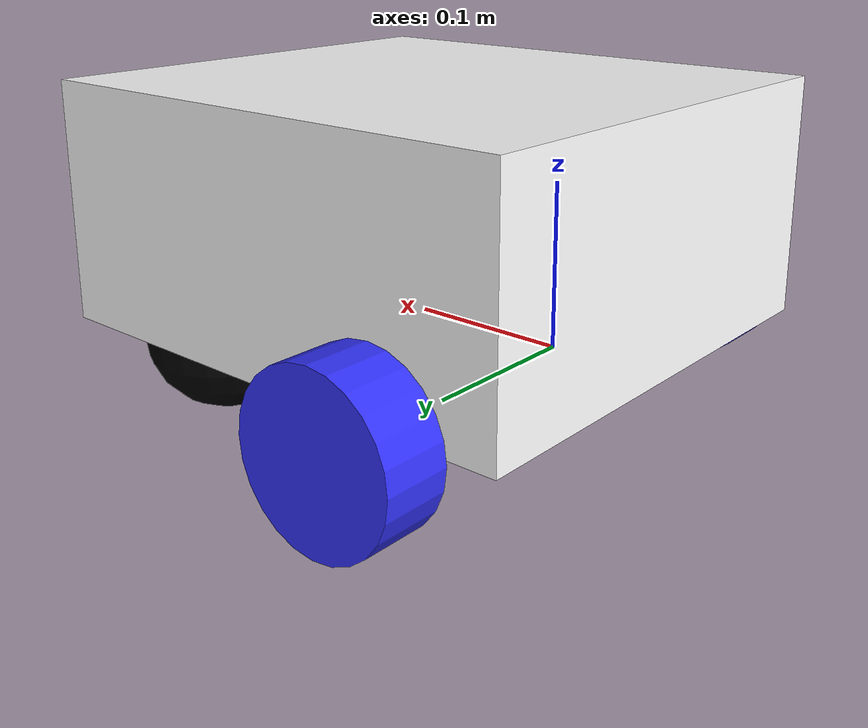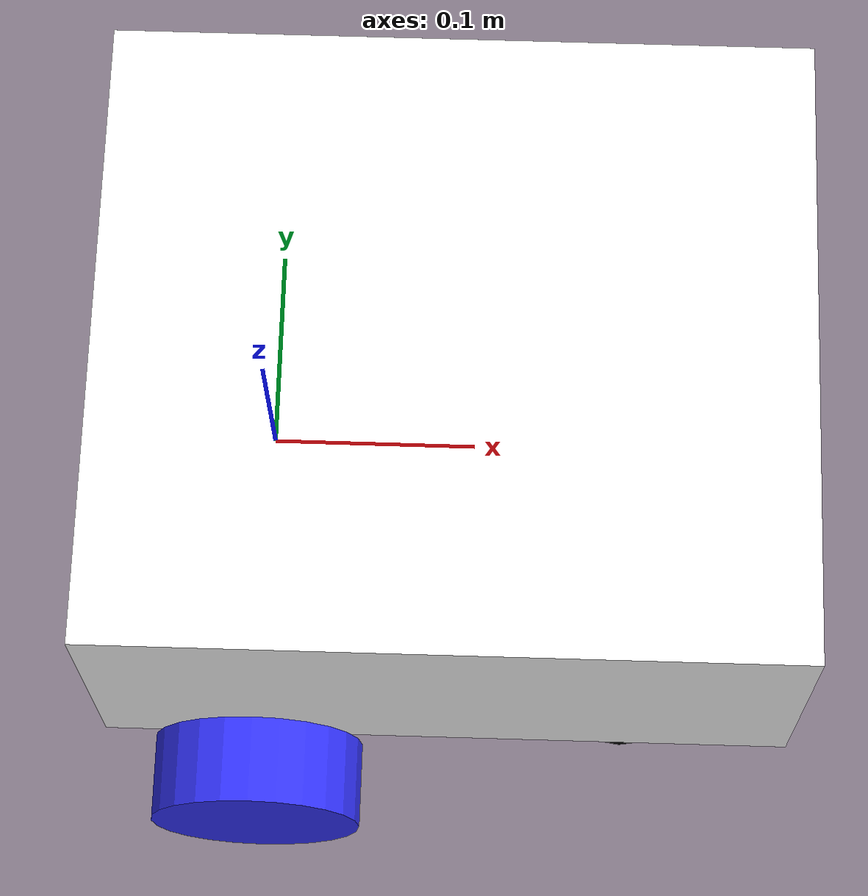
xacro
<?xml version="1.0"?>
<robot xmlns:xacro="http://www.ros.org/wiki/xacro" >

    <xacro:include filename="inertial_macros.xacro"/>

    <material name="white">
        <color rgba="1 1 1 1" />
    </material>

    <material name="blue">
        <color rgba="0.2 0.2 1 1"/>
    </material>

    <material name="black">
        <color rgba="0 0 0 1"/>
    </material>

    <material name="red">
        <color rgba="1 0 0 1"/>
    </material>

    <!-- BASE LINK -->

    <link name="base_link">

    </link>

    <!-- BASE FOOTPRINT -->

    <link name="base_footprint">

    </link>

    <joint name="base_footprint_joint" type="fixed">
        <parent link="base_link"/>
        <child link="base_footprint"/>
        <origin xyz="0 0 0"/>
    </joint>

    <!-- CHASSIS LINK -->

    <joint name="chassis_joint" type="fixed">
        <parent link="base_link"/>
        <child link="chassis"/>
        <origin xyz="-0.075 0 0"/>
    </joint>

    <link name="chassis">
        <visual>
            <origin xyz="0.165 0 0.075"/>
            <geometry>
                <box size="0.33 0.3 0.15"/>
            </geometry>
            <material name="white"/>
        </visual>
        <collision>
            <origin xyz="0.165 0 0.075"/>
            <geometry>
                <box size="0.33 0.3 0.15"/>
            </geometry>
        </collision>
        <xacro:inertial_box mass="0.5" x="0.33" y="0.3" z="0.15">
            <origin xyz="0.1275 0 0.075" rpy="0 0 0"/>
        </xacro:inertial_box>
    </link>

    <gazebo reference="chassis">
    	<material>Gazebo/Blue</material>
    </gazebo>

    <!-- LEFT WHEEL LINK -->

    <joint name="left_wheel_joint" type="continuous">
        <parent link="base_link"/>
        <child link="left_wheel"/>
        <origin xyz="0 0.175 0" rpy="-${pi/2} 0 0" />
        <axis xyz="0 0 1"/>
    </joint>

    <link name="left_wheel">
        <visual>
            <geometry>
                <cylinder radius="0.05" length="0.04"/>
            </geometry>
            <material name="blue"/>
        </visual>
        <collision>
            <geometry>
                <cylinder radius="0.05" length="0.04"/>
            </geometry>
        </collision>
        <xacro:inertial_cylinder mass="0.1" length="0.04" radius="0.05">
            <origin xyz="0 0 0" rpy="0 0 0"/>
        </xacro:inertial_cylinder>
    </link>

    <gazebo reference="left_wheel">
    	<material>Gazebo/White</material>
    </gazebo>

    <!-- RIGHT WHEEL LINK -->

    <joint name="right_wheel_joint" type="continuous">
        <parent link="base_link"/>
        <child link="right_wheel"/>
        <origin xyz="0 -0.175 0" rpy="${pi/2} 0 0" />
        <axis xyz="0 0 -1"/>
    </joint>

    <link name="right_wheel">
        <visual>
            <geometry>
                <cylinder radius="0.05" length="0.04"/>
            </geometry>
            <material name="blue"/>
        </visual>
        <collision>
            <geometry>
                <cylinder radius="0.05" length="0.04"/>
            </geometry>
        </collision>
        <xacro:inertial_cylinder mass="0.1" length="0.04" radius="0.05">
            <origin xyz="0 0 0" rpy="0 0 0"/>
        </xacro:inertial_cylinder>
    </link>

    <gazebo reference="right_wheel">
    	<material>Gazebo/White</material>
    </gazebo>

    <!-- CASTER WHEEL LINK -->

    <joint name="left_caster_wheel_joint" type="fixed">
        <parent link="chassis"/>
        <child link="left_caster_wheel"/>
        <origin xyz="0.25 0.1 0"/>
    </joint>

    <link name="left_caster_wheel">
        <visual>
            <geometry>
                <sphere radius="0.05"/>
            </geometry>
            <material name="black"/>
        </visual>
        <collision>
            <geometry>
                <sphere radius="0.05"/>
            </geometry>
        </collision>
        <xacro:inertial_sphere mass="0.1" radius="0.05">
            <origin xyz="0 0 0" rpy="0 0 0"/>
        </xacro:inertial_sphere>
    </link>

    <!-- CASTER WHEEL LINK -->

    <joint name="right_caster_wheel_joint" type="fixed">
        <parent link="chassis"/>
        <child link="right_caster_wheel"/>
        <origin xyz="0.25 -0.1 0"/>
    </joint>

    <link name="right_caster_wheel">
        <visual>
            <geometry>
                <sphere radius="0.05"/>
            </geometry>
            <material name="black"/>
        </visual>
        <collision>
            <geometry>
                <sphere radius="0.05"/>
            </geometry>
        </collision>
        <xacro:inertial_sphere mass="0.1" radius="0.05">
            <origin xyz="0 0 0" rpy="0 0 0"/>
        </xacro:inertial_sphere>
    </link>

    <gazebo reference="left_caster_wheel">
    	<material>Gazebo/Black</material>
        <mu1 value="0.001"/>
        <mu2 value="0.001"/>
    </gazebo>

    <gazebo reference="right_caster_wheel">
    	<material>Gazebo/Black</material>
        <mu1 value="0.001"/>
        <mu2 value="0.001"/>
    </gazebo>

</robot>
